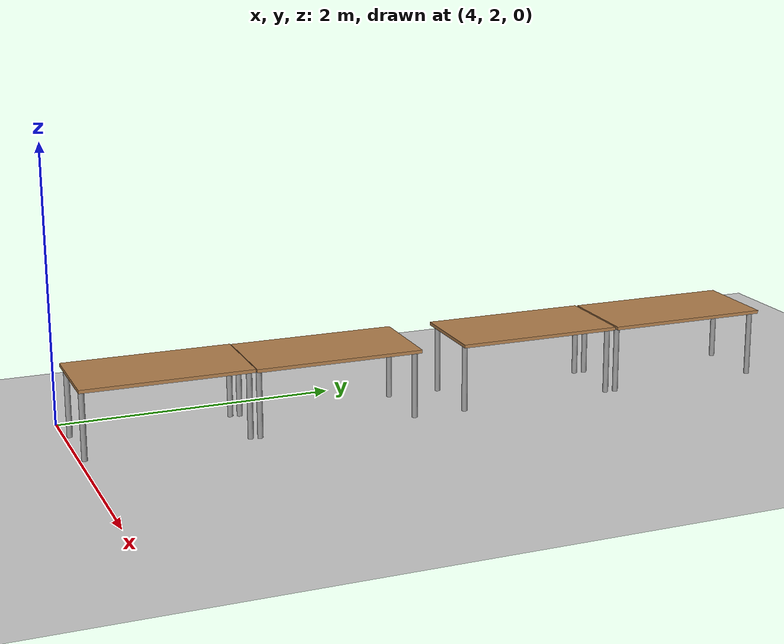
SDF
<sdf version="1.7">
 <world name="default">
  <model name="ground_plane">
   <static>1</static>
   <link name="link">
    <collision name="collision">
     <geometry><plane><normal>0 0 1</normal><size>100 100</size></plane></geometry>
     <surface>
      <contact><collide_bitmask>65535</collide_bitmask></contact>
      <friction><ode><mu>100</mu><mu2>50</mu2></ode></friction>
     </surface>
    </collision>
    <visual name="visual">
     <cast_shadows>0</cast_shadows>
     <geometry><plane><normal>0 0 1</normal><size>100 100</size></plane></geometry>
     <material>
      <script><uri>file://media/materials/scripts/gazebo.material</uri><name>Gazebo/Grey</name></script>
     </material>
    </visual>
   </link>
  </model>
  <model name="table_for_pc_clone_4">
   <link name="link">
    <inertial>
     <mass>1</mass>
     <inertia><ixx>1</ixx><ixy>0</ixy><ixz>0</ixz><iyy>1</iyy><iyz>0</iyz><izz>1</izz></inertia>
    </inertial>
    <visual name="back_right_leg">
     <pose>-0.57 -0.25 0.25 0 -0 0</pose>
     <geometry><cylinder><radius>0.02</radius><length>0.5</length></cylinder></geometry>
     <material>
      <script><uri>file://media/materials/scripts/gazebo.material</uri><name>Gazebo/Grey</name></script>
      <shader type="vertex"><normal_map>__default__</normal_map></shader>
      <ambient>0.3 0.3 0.3 1</ambient>
      <diffuse>0.7 0.7 0.7 1</diffuse>
      <specular>0.01 0.01 0.01 1</specular>
      <emissive>0 0 0 1</emissive>
     </material>
    </visual>
    <visual name="back_left_leg">
     <pose>-0.57 0.25 0.25 0 -0 0</pose>
     <geometry><cylinder><radius>0.02</radius><length>0.5</length></cylinder></geometry>
     <material>
      <script><uri>file://media/materials/scripts/gazebo.material</uri><name>Gazebo/Grey</name></script>
      <shader type="vertex"><normal_map>__default__</normal_map></shader>
      <ambient>0.3 0.3 0.3 1</ambient>
      <diffuse>0.7 0.7 0.7 1</diffuse>
      <specular>0.01 0.01 0.01 1</specular>
      <emissive>0 0 0 1</emissive>
     </material>
    </visual>
    <visual name="front_right_leg">
     <pose>0.57 -0.25 0.25 0 -0 0</pose>
     <geometry><cylinder><radius>0.02</radius><length>0.5</length></cylinder></geometry>
     <material>
      <script><uri>file://media/materials/scripts/gazebo.material</uri><name>Gazebo/Grey</name></script>
      <shader type="vertex"><normal_map>__default__</normal_map></shader>
      <ambient>0.3 0.3 0.3 1</ambient>
      <diffuse>0.7 0.7 0.7 1</diffuse>
      <specular>0.01 0.01 0.01 1</specular>
      <emissive>0 0 0 1</emissive>
     </material>
    </visual>
    <visual name="visual1">
     <pose>0 0 0.5 0 -0 0</pose>
     <geometry><box><size>1.2 0.64 0.024</size></box></geometry>
     <material>
      <script><uri>file://media/materials/scripts/gazebo.material</uri><name>Gazebo/Wood</name></script>
      <shader type="vertex"><normal_map>__default__</normal_map></shader>
      <ambient>1 1 1 1</ambient>
      <diffuse>1 1 1 1</diffuse>
      <specular>0.2 0.2 0.2 1</specular>
      <emissive>0 0 0 1</emissive>
     </material>
    </visual>
    <visual name="front_left_leg">
     <pose>0.57 0.25 0.25 0 -0 0</pose>
     <geometry><cylinder><radius>0.02</radius><length>0.5</length></cylinder></geometry>
     <material>
      <script><uri>file://media/materials/scripts/gazebo.material</uri><name>Gazebo/Grey</name></script>
      <shader type="vertex"><normal_map>__default__</normal_map></shader>
      <ambient>0.3 0.3 0.3 1</ambient>
      <diffuse>0.7 0.7 0.7 1</diffuse>
      <specular>0.01 0.01 0.01 1</specular>
      <emissive>0 0 0 1</emissive>
     </material>
    </visual>
    <collision name="surface">
     <pose>0 0 0.5 0 -0 0</pose>
     <geometry><box><size>1.2 0.64 0.024</size></box></geometry>
     <surface>
      <friction>
       <ode><mu>0.6</mu><mu2>0.6</mu2><fdir1>0 0 0</fdir1><slip1>0</slip1><slip2>0</slip2></ode>
       <torsional>
        <coefficient>1</coefficient>
        <patch_radius>0</patch_radius>
        <surface_radius>0</surface_radius>
        <use_patch_radius>1</use_patch_radius>
        <ode><slip>0</slip></ode>
       </torsional>
      </friction>
      <bounce><restitution_coefficient>0</restitution_coefficient><threshold>1e+06</threshold></bounce>
      <contact>
       <collide_without_contact>0</collide_without_contact>
       <collide_without_contact_bitmask>1</collide_without_contact_bitmask>
       <collide_bitmask>1</collide_bitmask>
       <ode>
        <soft_cfm>0</soft_cfm>
        <soft_erp>0.2</soft_erp>
        <kp>1e+13</kp>
        <kd>1</kd>
        <max_vel>0.01</max_vel>
        <min_depth>0</min_depth>
       </ode>
       <bullet>
        <split_impulse>1</split_impulse>
        <split_impulse_penetration_threshold>-0.01</split_impulse_penetration_threshold>
        <soft_cfm>0</soft_cfm>
        <soft_erp>0.2</soft_erp>
        <kp>1e+13</kp>
        <kd>1</kd>
       </bullet>
      </contact>
     </surface>
    </collision>
    <collision name="back_right_leg">
     <pose>-0.57 -0.25 0.25 0 -0 0</pose>
     <geometry><cylinder><radius>0.02</radius><length>0.5</length></cylinder></geometry>
     <surface>
      <friction>
       <ode><mu>1</mu><mu2>1</mu2><fdir1>0 0 0</fdir1><slip1>0</slip1><slip2>0</slip2></ode>
       <torsional>
        <coefficient>1</coefficient>
        <patch_radius>0</patch_radius>
        <surface_radius>0</surface_radius>
        <use_patch_radius>1</use_patch_radius>
        <ode><slip>0</slip></ode>
       </torsional>
      </friction>
      <bounce><restitution_coefficient>0</restitution_coefficient><threshold>1e+06</threshold></bounce>
      <contact>
       <collide_without_contact>0</collide_without_contact>
       <collide_without_contact_bitmask>1</collide_without_contact_bitmask>
       <collide_bitmask>1</collide_bitmask>
       <ode>
        <soft_cfm>0</soft_cfm>
        <soft_erp>0.2</soft_erp>
        <kp>1e+13</kp>
        <kd>1</kd>
        <max_vel>0.01</max_vel>
        <min_depth>0</min_depth>
       </ode>
       <bullet>
        <split_impulse>1</split_impulse>
        <split_impulse_penetration_threshold>-0.01</split_impulse_penetration_threshold>
        <soft_cfm>0</soft_cfm>
        <soft_erp>0.2</soft_erp>
        <kp>1e+13</kp>
        <kd>1</kd>
       </bullet>
      </contact>
     </surface>
    </collision>
    <collision name="front_right_leg">
     <pose>0.57 -0.25 0.25 0 -0 0</pose>
     <geometry><cylinder><radius>0.02</radius><length>0.5</length></cylinder></geometry>
     <surface>
      <friction>
       <ode><mu>1</mu><mu2>1</mu2><fdir1>0 0 0</fdir1><slip1>0</slip1><slip2>0</slip2></ode>
       <torsional>
        <coefficient>1</coefficient>
        <patch_radius>0</patch_radius>
        <surface_radius>0</surface_radius>
        <use_patch_radius>1</use_patch_radius>
        <ode><slip>0</slip></ode>
       </torsional>
      </friction>
      <bounce><restitution_coefficient>0</restitution_coefficient><threshold>1e+06</threshold></bounce>
      <contact>
       <collide_without_contact>0</collide_without_contact>
       <collide_without_contact_bitmask>1</collide_without_contact_bitmask>
       <collide_bitmask>1</collide_bitmask>
       <ode>
        <soft_cfm>0</soft_cfm>
        <soft_erp>0.2</soft_erp>
        <kp>1e+13</kp>
        <kd>1</kd>
        <max_vel>0.01</max_vel>
        <min_depth>0</min_depth>
       </ode>
       <bullet>
        <split_impulse>1</split_impulse>
        <split_impulse_penetration_threshold>-0.01</split_impulse_penetration_threshold>
        <soft_cfm>0</soft_cfm>
        <soft_erp>0.2</soft_erp>
        <kp>1e+13</kp>
        <kd>1</kd>
       </bullet>
      </contact>
     </surface>
    </collision>
    <collision name="back_left_leg">
     <pose>-0.57 0.25 0.25 0 -0 0</pose>
     <geometry><cylinder><radius>0.02</radius><length>0.5</length></cylinder></geometry>
     <surface>
      <friction>
       <ode><mu>1</mu><mu2>1</mu2><fdir1>0 0 0</fdir1><slip1>0</slip1><slip2>0</slip2></ode>
       <torsional>
        <coefficient>1</coefficient>
        <patch_radius>0</patch_radius>
        <surface_radius>0</surface_radius>
        <use_patch_radius>1</use_patch_radius>
        <ode><slip>0</slip></ode>
       </torsional>
      </friction>
      <bounce><restitution_coefficient>0</restitution_coefficient><threshold>1e+06</threshold></bounce>
      <contact>
       <collide_without_contact>0</collide_without_contact>
       <collide_without_contact_bitmask>1</collide_without_contact_bitmask>
       <collide_bitmask>1</collide_bitmask>
       <ode>
        <soft_cfm>0</soft_cfm>
        <soft_erp>0.2</soft_erp>
        <kp>1e+13</kp>
        <kd>1</kd>
        <max_vel>0.01</max_vel>
        <min_depth>0</min_depth>
       </ode>
       <bullet>
        <split_impulse>1</split_impulse>
        <split_impulse_penetration_threshold>-0.01</split_impulse_penetration_threshold>
        <soft_cfm>0</soft_cfm>
        <soft_erp>0.2</soft_erp>
        <kp>1e+13</kp>
        <kd>1</kd>
       </bullet>
      </contact>
     </surface>
    </collision>
    <collision name="front_left_leg">
     <pose>0.57 0.25 0.25 0 -0 0</pose>
     <geometry><cylinder><radius>0.02</radius><length>0.5</length></cylinder></geometry>
     <surface>
      <friction>
       <ode><mu>1</mu><mu2>1</mu2><fdir1>0 0 0</fdir1><slip1>0</slip1><slip2>0</slip2></ode>
       <torsional>
        <coefficient>1</coefficient>
        <patch_radius>0</patch_radius>
        <surface_radius>0</surface_radius>
        <use_patch_radius>1</use_patch_radius>
        <ode><slip>0</slip></ode>
       </torsional>
      </friction>
      <bounce><restitution_coefficient>0</restitution_coefficient><threshold>1e+06</threshold></bounce>
      <contact>
       <collide_without_contact>0</collide_without_contact>
       <collide_without_contact_bitmask>1</collide_without_contact_bitmask>
       <collide_bitmask>1</collide_bitmask>
       <ode>
        <soft_cfm>0</soft_cfm>
        <soft_erp>0.2</soft_erp>
        <kp>1e+13</kp>
        <kd>1</kd>
        <max_vel>0.01</max_vel>
        <min_depth>0</min_depth>
       </ode>
       <bullet>
        <split_impulse>1</split_impulse>
        <split_impulse_penetration_threshold>-0.01</split_impulse_penetration_threshold>
        <soft_cfm>0</soft_cfm>
        <soft_erp>0.2</soft_erp>
        <kp>1e+13</kp>
        <kd>1</kd>
       </bullet>
      </contact>
     </surface>
    </collision>
   </link>
   <static>1</static>
   <pose>4.573 6.55305 0 0 -0 1.56413</pose>
  </model>
  <model name="table_for_pc_clone_5">
   <link name="link">
    <inertial>
     <mass>1</mass>
     <inertia><ixx>1</ixx><ixy>0</ixy><ixz>0</ixz><iyy>1</iyy><iyz>0</iyz><izz>1</izz></inertia>
    </inertial>
    <visual name="back_right_leg">
     <pose>-0.57 -0.25 0.25 0 -0 0</pose>
     <geometry><cylinder><radius>0.02</radius><length>0.5</length></cylinder></geometry>
     <material>
      <script><uri>file://media/materials/scripts/gazebo.material</uri><name>Gazebo/Grey</name></script>
      <shader type="vertex"><normal_map>__default__</normal_map></shader>
      <ambient>0.3 0.3 0.3 1</ambient>
      <diffuse>0.7 0.7 0.7 1</diffuse>
      <specular>0.01 0.01 0.01 1</specular>
      <emissive>0 0 0 1</emissive>
     </material>
    </visual>
    <visual name="back_left_leg">
     <pose>-0.57 0.25 0.25 0 -0 0</pose>
     <geometry><cylinder><radius>0.02</radius><length>0.5</length></cylinder></geometry>
     <material>
      <script><uri>file://media/materials/scripts/gazebo.material</uri><name>Gazebo/Grey</name></script>
      <shader type="vertex"><normal_map>__default__</normal_map></shader>
      <ambient>0.3 0.3 0.3 1</ambient>
      <diffuse>0.7 0.7 0.7 1</diffuse>
      <specular>0.01 0.01 0.01 1</specular>
      <emissive>0 0 0 1</emissive>
     </material>
    </visual>
    <visual name="front_right_leg">
     <pose>0.57 -0.25 0.25 0 -0 0</pose>
     <geometry><cylinder><radius>0.02</radius><length>0.5</length></cylinder></geometry>
     <material>
      <script><uri>file://media/materials/scripts/gazebo.material</uri><name>Gazebo/Grey</name></script>
      <shader type="vertex"><normal_map>__default__</normal_map></shader>
      <ambient>0.3 0.3 0.3 1</ambient>
      <diffuse>0.7 0.7 0.7 1</diffuse>
      <specular>0.01 0.01 0.01 1</specular>
      <emissive>0 0 0 1</emissive>
     </material>
    </visual>
    <visual name="visual1">
     <pose>0 0 0.5 0 -0 0</pose>
     <geometry><box><size>1.2 0.64 0.024</size></box></geometry>
     <material>
      <script><uri>file://media/materials/scripts/gazebo.material</uri><name>Gazebo/Wood</name></script>
      <shader type="vertex"><normal_map>__default__</normal_map></shader>
      <ambient>1 1 1 1</ambient>
      <diffuse>1 1 1 1</diffuse>
      <specular>0.2 0.2 0.2 1</specular>
      <emissive>0 0 0 1</emissive>
     </material>
    </visual>
    <visual name="front_left_leg">
     <pose>0.57 0.25 0.25 0 -0 0</pose>
     <geometry><cylinder><radius>0.02</radius><length>0.5</length></cylinder></geometry>
     <material>
      <script><uri>file://media/materials/scripts/gazebo.material</uri><name>Gazebo/Grey</name></script>
      <shader type="vertex"><normal_map>__default__</normal_map></shader>
      <ambient>0.3 0.3 0.3 1</ambient>
      <diffuse>0.7 0.7 0.7 1</diffuse>
      <specular>0.01 0.01 0.01 1</specular>
      <emissive>0 0 0 1</emissive>
     </material>
    </visual>
    <collision name="surface">
     <pose>0 0 0.5 0 -0 0</pose>
     <geometry><box><size>1.2 0.64 0.024</size></box></geometry>
     <surface>
      <friction>
       <ode><mu>0.6</mu><mu2>0.6</mu2><fdir1>0 0 0</fdir1><slip1>0</slip1><slip2>0</slip2></ode>
       <torsional>
        <coefficient>1</coefficient>
        <patch_radius>0</patch_radius>
        <surface_radius>0</surface_radius>
        <use_patch_radius>1</use_patch_radius>
        <ode><slip>0</slip></ode>
       </torsional>
      </friction>
      <bounce><restitution_coefficient>0</restitution_coefficient><threshold>1e+06</threshold></bounce>
      <contact>
       <collide_without_contact>0</collide_without_contact>
       <collide_without_contact_bitmask>1</collide_without_contact_bitmask>
       <collide_bitmask>1</collide_bitmask>
       <ode>
        <soft_cfm>0</soft_cfm>
        <soft_erp>0.2</soft_erp>
        <kp>1e+13</kp>
        <kd>1</kd>
        <max_vel>0.01</max_vel>
        <min_depth>0</min_depth>
       </ode>
       <bullet>
        <split_impulse>1</split_impulse>
        <split_impulse_penetration_threshold>-0.01</split_impulse_penetration_threshold>
        <soft_cfm>0</soft_cfm>
        <soft_erp>0.2</soft_erp>
        <kp>1e+13</kp>
        <kd>1</kd>
       </bullet>
      </contact>
     </surface>
    </collision>
    <collision name="back_right_leg">
     <pose>-0.57 -0.25 0.25 0 -0 0</pose>
     <geometry><cylinder><radius>0.02</radius><length>0.5</length></cylinder></geometry>
     <surface>
      <friction>
       <ode><mu>1</mu><mu2>1</mu2><fdir1>0 0 0</fdir1><slip1>0</slip1><slip2>0</slip2></ode>
       <torsional>
        <coefficient>1</coefficient>
        <patch_radius>0</patch_radius>
        <surface_radius>0</surface_radius>
        <use_patch_radius>1</use_patch_radius>
        <ode><slip>0</slip></ode>
       </torsional>
      </friction>
      <bounce><restitution_coefficient>0</restitution_coefficient><threshold>1e+06</threshold></bounce>
      <contact>
       <collide_without_contact>0</collide_without_contact>
       <collide_without_contact_bitmask>1</collide_without_contact_bitmask>
       <collide_bitmask>1</collide_bitmask>
       <ode>
        <soft_cfm>0</soft_cfm>
        <soft_erp>0.2</soft_erp>
        <kp>1e+13</kp>
        <kd>1</kd>
        <max_vel>0.01</max_vel>
        <min_depth>0</min_depth>
       </ode>
       <bullet>
        <split_impulse>1</split_impulse>
        <split_impulse_penetration_threshold>-0.01</split_impulse_penetration_threshold>
        <soft_cfm>0</soft_cfm>
        <soft_erp>0.2</soft_erp>
        <kp>1e+13</kp>
        <kd>1</kd>
       </bullet>
      </contact>
     </surface>
    </collision>
    <collision name="front_right_leg">
     <pose>0.57 -0.25 0.25 0 -0 0</pose>
     <geometry><cylinder><radius>0.02</radius><length>0.5</length></cylinder></geometry>
     <surface>
      <friction>
       <ode><mu>1</mu><mu2>1</mu2><fdir1>0 0 0</fdir1><slip1>0</slip1><slip2>0</slip2></ode>
       <torsional>
        <coefficient>1</coefficient>
        <patch_radius>0</patch_radius>
        <surface_radius>0</surface_radius>
        <use_patch_radius>1</use_patch_radius>
        <ode><slip>0</slip></ode>
       </torsional>
      </friction>
      <bounce><restitution_coefficient>0</restitution_coefficient><threshold>1e+06</threshold></bounce>
      <contact>
       <collide_without_contact>0</collide_without_contact>
       <collide_without_contact_bitmask>1</collide_without_contact_bitmask>
       <collide_bitmask>1</collide_bitmask>
       <ode>
        <soft_cfm>0</soft_cfm>
        <soft_erp>0.2</soft_erp>
        <kp>1e+13</kp>
        <kd>1</kd>
        <max_vel>0.01</max_vel>
        <min_depth>0</min_depth>
       </ode>
       <bullet>
        <split_impulse>1</split_impulse>
        <split_impulse_penetration_threshold>-0.01</split_impulse_penetration_threshold>
        <soft_cfm>0</soft_cfm>
        <soft_erp>0.2</soft_erp>
        <kp>1e+13</kp>
        <kd>1</kd>
       </bullet>
      </contact>
     </surface>
    </collision>
    <collision name="back_left_leg">
     <pose>-0.57 0.25 0.25 0 -0 0</pose>
     <geometry><cylinder><radius>0.02</radius><length>0.5</length></cylinder></geometry>
     <surface>
      <friction>
       <ode><mu>1</mu><mu2>1</mu2><fdir1>0 0 0</fdir1><slip1>0</slip1><slip2>0</slip2></ode>
       <torsional>
        <coefficient>1</coefficient>
        <patch_radius>0</patch_radius>
        <surface_radius>0</surface_radius>
        <use_patch_radius>1</use_patch_radius>
        <ode><slip>0</slip></ode>
       </torsional>
      </friction>
      <bounce><restitution_coefficient>0</restitution_coefficient><threshold>1e+06</threshold></bounce>
      <contact>
       <collide_without_contact>0</collide_without_contact>
       <collide_without_contact_bitmask>1</collide_without_contact_bitmask>
       <collide_bitmask>1</collide_bitmask>
       <ode>
        <soft_cfm>0</soft_cfm>
        <soft_erp>0.2</soft_erp>
        <kp>1e+13</kp>
        <kd>1</kd>
        <max_vel>0.01</max_vel>
        <min_depth>0</min_depth>
       </ode>
       <bullet>
        <split_impulse>1</split_impulse>
        <split_impulse_penetration_threshold>-0.01</split_impulse_penetration_threshold>
        <soft_cfm>0</soft_cfm>
        <soft_erp>0.2</soft_erp>
        <kp>1e+13</kp>
        <kd>1</kd>
       </bullet>
      </contact>
     </surface>
    </collision>
    <collision name="front_left_leg">
     <pose>0.57 0.25 0.25 0 -0 0</pose>
     <geometry><cylinder><radius>0.02</radius><length>0.5</length></cylinder></geometry>
     <surface>
      <friction>
       <ode><mu>1</mu><mu2>1</mu2><fdir1>0 0 0</fdir1><slip1>0</slip1><slip2>0</slip2></ode>
       <torsional>
        <coefficient>1</coefficient>
        <patch_radius>0</patch_radius>
        <surface_radius>0</surface_radius>
        <use_patch_radius>1</use_patch_radius>
        <ode><slip>0</slip></ode>
       </torsional>
      </friction>
      <bounce><restitution_coefficient>0</restitution_coefficient><threshold>1e+06</threshold></bounce>
      <contact>
       <collide_without_contact>0</collide_without_contact>
       <collide_without_contact_bitmask>1</collide_without_contact_bitmask>
       <collide_bitmask>1</collide_bitmask>
       <ode>
        <soft_cfm>0</soft_cfm>
        <soft_erp>0.2</soft_erp>
        <kp>1e+13</kp>
        <kd>1</kd>
        <max_vel>0.01</max_vel>
        <min_depth>0</min_depth>
       </ode>
       <bullet>
        <split_impulse>1</split_impulse>
        <split_impulse_penetration_threshold>-0.01</split_impulse_penetration_threshold>
        <soft_cfm>0</soft_cfm>
        <soft_erp>0.2</soft_erp>
        <kp>1e+13</kp>
        <kd>1</kd>
       </bullet>
      </contact>
     </surface>
    </collision>
   </link>
   <static>1</static>
   <pose>4.55794 5.33664 0 0 -0 1.56413</pose>
  </model>
  <model name="table_for_pc_clone_6">
   <link name="link">
    <inertial>
     <mass>1</mass>
     <inertia><ixx>1</ixx><ixy>0</ixy><ixz>0</ixz><iyy>1</iyy><iyz>0</iyz><izz>1</izz></inertia>
    </inertial>
    <visual name="back_right_leg">
     <pose>-0.57 -0.25 0.25 0 -0 0</pose>
     <geometry><cylinder><radius>0.02</radius><length>0.5</length></cylinder></geometry>
     <material>
      <script><uri>file://media/materials/scripts/gazebo.material</uri><name>Gazebo/Grey</name></script>
      <shader type="vertex"><normal_map>__default__</normal_map></shader>
      <ambient>0.3 0.3 0.3 1</ambient>
      <diffuse>0.7 0.7 0.7 1</diffuse>
      <specular>0.01 0.01 0.01 1</specular>
      <emissive>0 0 0 1</emissive>
     </material>
    </visual>
    <visual name="back_left_leg">
     <pose>-0.57 0.25 0.25 0 -0 0</pose>
     <geometry><cylinder><radius>0.02</radius><length>0.5</length></cylinder></geometry>
     <material>
      <script><uri>file://media/materials/scripts/gazebo.material</uri><name>Gazebo/Grey</name></script>
      <shader type="vertex"><normal_map>__default__</normal_map></shader>
      <ambient>0.3 0.3 0.3 1</ambient>
      <diffuse>0.7 0.7 0.7 1</diffuse>
      <specular>0.01 0.01 0.01 1</specular>
      <emissive>0 0 0 1</emissive>
     </material>
    </visual>
    <visual name="front_right_leg">
     <pose>0.57 -0.25 0.25 0 -0 0</pose>
     <geometry><cylinder><radius>0.02</radius><length>0.5</length></cylinder></geometry>
     <material>
      <script><uri>file://media/materials/scripts/gazebo.material</uri><name>Gazebo/Grey</name></script>
      <shader type="vertex"><normal_map>__default__</normal_map></shader>
      <ambient>0.3 0.3 0.3 1</ambient>
      <diffuse>0.7 0.7 0.7 1</diffuse>
      <specular>0.01 0.01 0.01 1</specular>
      <emissive>0 0 0 1</emissive>
     </material>
    </visual>
    <visual name="visual1">
     <pose>0 0 0.5 0 -0 0</pose>
     <geometry><box><size>1.2 0.64 0.024</size></box></geometry>
     <material>
      <script><uri>file://media/materials/scripts/gazebo.material</uri><name>Gazebo/Wood</name></script>
      <shader type="vertex"><normal_map>__default__</normal_map></shader>
      <ambient>1 1 1 1</ambient>
      <diffuse>1 1 1 1</diffuse>
      <specular>0.2 0.2 0.2 1</specular>
      <emissive>0 0 0 1</emissive>
     </material>
    </visual>
    <visual name="front_left_leg">
     <pose>0.57 0.25 0.25 0 -0 0</pose>
     <geometry><cylinder><radius>0.02</radius><length>0.5</length></cylinder></geometry>
     <material>
      <script><uri>file://media/materials/scripts/gazebo.material</uri><name>Gazebo/Grey</name></script>
      <shader type="vertex"><normal_map>__default__</normal_map></shader>
      <ambient>0.3 0.3 0.3 1</ambient>
      <diffuse>0.7 0.7 0.7 1</diffuse>
      <specular>0.01 0.01 0.01 1</specular>
      <emissive>0 0 0 1</emissive>
     </material>
    </visual>
    <collision name="surface">
     <pose>0 0 0.5 0 -0 0</pose>
     <geometry><box><size>1.2 0.64 0.024</size></box></geometry>
     <surface>
      <friction>
       <ode><mu>0.6</mu><mu2>0.6</mu2><fdir1>0 0 0</fdir1><slip1>0</slip1><slip2>0</slip2></ode>
       <torsional>
        <coefficient>1</coefficient>
        <patch_radius>0</patch_radius>
        <surface_radius>0</surface_radius>
        <use_patch_radius>1</use_patch_radius>
        <ode><slip>0</slip></ode>
       </torsional>
      </friction>
      <bounce><restitution_coefficient>0</restitution_coefficient><threshold>1e+06</threshold></bounce>
      <contact>
       <collide_without_contact>0</collide_without_contact>
       <collide_without_contact_bitmask>1</collide_without_contact_bitmask>
       <collide_bitmask>1</collide_bitmask>
       <ode>
        <soft_cfm>0</soft_cfm>
        <soft_erp>0.2</soft_erp>
        <kp>1e+13</kp>
        <kd>1</kd>
        <max_vel>0.01</max_vel>
        <min_depth>0</min_depth>
       </ode>
       <bullet>
        <split_impulse>1</split_impulse>
        <split_impulse_penetration_threshold>-0.01</split_impulse_penetration_threshold>
        <soft_cfm>0</soft_cfm>
        <soft_erp>0.2</soft_erp>
        <kp>1e+13</kp>
        <kd>1</kd>
       </bullet>
      </contact>
     </surface>
    </collision>
    <collision name="back_right_leg">
     <pose>-0.57 -0.25 0.25 0 -0 0</pose>
     <geometry><cylinder><radius>0.02</radius><length>0.5</length></cylinder></geometry>
     <surface>
      <friction>
       <ode><mu>1</mu><mu2>1</mu2><fdir1>0 0 0</fdir1><slip1>0</slip1><slip2>0</slip2></ode>
       <torsional>
        <coefficient>1</coefficient>
        <patch_radius>0</patch_radius>
        <surface_radius>0</surface_radius>
        <use_patch_radius>1</use_patch_radius>
        <ode><slip>0</slip></ode>
       </torsional>
      </friction>
      <bounce><restitution_coefficient>0</restitution_coefficient><threshold>1e+06</threshold></bounce>
      <contact>
       <collide_without_contact>0</collide_without_contact>
       <collide_without_contact_bitmask>1</collide_without_contact_bitmask>
       <collide_bitmask>1</collide_bitmask>
       <ode>
        <soft_cfm>0</soft_cfm>
        <soft_erp>0.2</soft_erp>
        <kp>1e+13</kp>
        <kd>1</kd>
        <max_vel>0.01</max_vel>
        <min_depth>0</min_depth>
       </ode>
       <bullet>
        <split_impulse>1</split_impulse>
        <split_impulse_penetration_threshold>-0.01</split_impulse_penetration_threshold>
        <soft_cfm>0</soft_cfm>
        <soft_erp>0.2</soft_erp>
        <kp>1e+13</kp>
        <kd>1</kd>
       </bullet>
      </contact>
     </surface>
    </collision>
    <collision name="front_right_leg">
     <pose>0.57 -0.25 0.25 0 -0 0</pose>
     <geometry><cylinder><radius>0.02</radius><length>0.5</length></cylinder></geometry>
     <surface>
      <friction>
       <ode><mu>1</mu><mu2>1</mu2><fdir1>0 0 0</fdir1><slip1>0</slip1><slip2>0</slip2></ode>
       <torsional>
        <coefficient>1</coefficient>
        <patch_radius>0</patch_radius>
        <surface_radius>0</surface_radius>
        <use_patch_radius>1</use_patch_radius>
        <ode><slip>0</slip></ode>
       </torsional>
      </friction>
      <bounce><restitution_coefficient>0</restitution_coefficient><threshold>1e+06</threshold></bounce>
      <contact>
       <collide_without_contact>0</collide_without_contact>
       <collide_without_contact_bitmask>1</collide_without_contact_bitmask>
       <collide_bitmask>1</collide_bitmask>
       <ode>
        <soft_cfm>0</soft_cfm>
        <soft_erp>0.2</soft_erp>
        <kp>1e+13</kp>
        <kd>1</kd>
        <max_vel>0.01</max_vel>
        <min_depth>0</min_depth>
       </ode>
       <bullet>
        <split_impulse>1</split_impulse>
        <split_impulse_penetration_threshold>-0.01</split_impulse_penetration_threshold>
        <soft_cfm>0</soft_cfm>
        <soft_erp>0.2</soft_erp>
        <kp>1e+13</kp>
        <kd>1</kd>
       </bullet>
      </contact>
     </surface>
    </collision>
    <collision name="back_left_leg">
     <pose>-0.57 0.25 0.25 0 -0 0</pose>
     <geometry><cylinder><radius>0.02</radius><length>0.5</length></cylinder></geometry>
     <surface>
      <friction>
       <ode><mu>1</mu><mu2>1</mu2><fdir1>0 0 0</fdir1><slip1>0</slip1><slip2>0</slip2></ode>
       <torsional>
        <coefficient>1</coefficient>
        <patch_radius>0</patch_radius>
        <surface_radius>0</surface_radius>
        <use_patch_radius>1</use_patch_radius>
        <ode><slip>0</slip></ode>
       </torsional>
      </friction>
      <bounce><restitution_coefficient>0</restitution_coefficient><threshold>1e+06</threshold></bounce>
      <contact>
       <collide_without_contact>0</collide_without_contact>
       <collide_without_contact_bitmask>1</collide_without_contact_bitmask>
       <collide_bitmask>1</collide_bitmask>
       <ode>
        <soft_cfm>0</soft_cfm>
        <soft_erp>0.2</soft_erp>
        <kp>1e+13</kp>
        <kd>1</kd>
        <max_vel>0.01</max_vel>
        <min_depth>0</min_depth>
       </ode>
       <bullet>
        <split_impulse>1</split_impulse>
        <split_impulse_penetration_threshold>-0.01</split_impulse_penetration_threshold>
        <soft_cfm>0</soft_cfm>
        <soft_erp>0.2</soft_erp>
        <kp>1e+13</kp>
        <kd>1</kd>
       </bullet>
      </contact>
     </surface>
    </collision>
    <collision name="front_left_leg">
     <pose>0.57 0.25 0.25 0 -0 0</pose>
     <geometry><cylinder><radius>0.02</radius><length>0.5</length></cylinder></geometry>
     <surface>
      <friction>
       <ode><mu>1</mu><mu2>1</mu2><fdir1>0 0 0</fdir1><slip1>0</slip1><slip2>0</slip2></ode>
       <torsional>
        <coefficient>1</coefficient>
        <patch_radius>0</patch_radius>
        <surface_radius>0</surface_radius>
        <use_patch_radius>1</use_patch_radius>
        <ode><slip>0</slip></ode>
       </torsional>
      </friction>
      <bounce><restitution_coefficient>0</restitution_coefficient><threshold>1e+06</threshold></bounce>
      <contact>
       <collide_without_contact>0</collide_without_contact>
       <collide_without_contact_bitmask>1</collide_without_contact_bitmask>
       <collide_bitmask>1</collide_bitmask>
       <ode>
        <soft_cfm>0</soft_cfm>
        <soft_erp>0.2</soft_erp>
        <kp>1e+13</kp>
        <kd>1</kd>
        <max_vel>0.01</max_vel>
        <min_depth>0</min_depth>
       </ode>
       <bullet>
        <split_impulse>1</split_impulse>
        <split_impulse_penetration_threshold>-0.01</split_impulse_penetration_threshold>
        <soft_cfm>0</soft_cfm>
        <soft_erp>0.2</soft_erp>
        <kp>1e+13</kp>
        <kd>1</kd>
       </bullet>
      </contact>
     </surface>
    </collision>
   </link>
   <static>1</static>
   <pose>4.54288 3.81482 0 0 -0 1.56413</pose>
  </model>
  <model name="table_for_pc_clone_7">
   <link name="link">
    <inertial>
     <mass>1</mass>
     <inertia><ixx>1</ixx><ixy>0</ixy><ixz>0</ixz><iyy>1</iyy><iyz>0</iyz><izz>1</izz></inertia>
    </inertial>
    <visual name="back_right_leg">
     <pose>-0.57 -0.25 0.25 0 -0 0</pose>
     <geometry><cylinder><radius>0.02</radius><length>0.5</length></cylinder></geometry>
     <material>
      <script><uri>file://media/materials/scripts/gazebo.material</uri><name>Gazebo/Grey</name></script>
      <shader type="vertex"><normal_map>__default__</normal_map></shader>
      <ambient>0.3 0.3 0.3 1</ambient>
      <diffuse>0.7 0.7 0.7 1</diffuse>
      <specular>0.01 0.01 0.01 1</specular>
      <emissive>0 0 0 1</emissive>
     </material>
    </visual>
    <visual name="back_left_leg">
     <pose>-0.57 0.25 0.25 0 -0 0</pose>
     <geometry><cylinder><radius>0.02</radius><length>0.5</length></cylinder></geometry>
     <material>
      <script><uri>file://media/materials/scripts/gazebo.material</uri><name>Gazebo/Grey</name></script>
      <shader type="vertex"><normal_map>__default__</normal_map></shader>
      <ambient>0.3 0.3 0.3 1</ambient>
      <diffuse>0.7 0.7 0.7 1</diffuse>
      <specular>0.01 0.01 0.01 1</specular>
      <emissive>0 0 0 1</emissive>
     </material>
    </visual>
    <visual name="front_right_leg">
     <pose>0.57 -0.25 0.25 0 -0 0</pose>
     <geometry><cylinder><radius>0.02</radius><length>0.5</length></cylinder></geometry>
     <material>
      <script><uri>file://media/materials/scripts/gazebo.material</uri><name>Gazebo/Grey</name></script>
      <shader type="vertex"><normal_map>__default__</normal_map></shader>
      <ambient>0.3 0.3 0.3 1</ambient>
      <diffuse>0.7 0.7 0.7 1</diffuse>
      <specular>0.01 0.01 0.01 1</specular>
      <emissive>0 0 0 1</emissive>
     </material>
    </visual>
    <visual name="visual1">
     <pose>0 0 0.5 0 -0 0</pose>
     <geometry><box><size>1.2 0.64 0.024</size></box></geometry>
     <material>
      <script><uri>file://media/materials/scripts/gazebo.material</uri><name>Gazebo/Wood</name></script>
      <shader type="vertex"><normal_map>__default__</normal_map></shader>
      <ambient>1 1 1 1</ambient>
      <diffuse>1 1 1 1</diffuse>
      <specular>0.2 0.2 0.2 1</specular>
      <emissive>0 0 0 1</emissive>
     </material>
    </visual>
    <visual name="front_left_leg">
     <pose>0.57 0.25 0.25 0 -0 0</pose>
     <geometry><cylinder><radius>0.02</radius><length>0.5</length></cylinder></geometry>
     <material>
      <script><uri>file://media/materials/scripts/gazebo.material</uri><name>Gazebo/Grey</name></script>
      <shader type="vertex"><normal_map>__default__</normal_map></shader>
      <ambient>0.3 0.3 0.3 1</ambient>
      <diffuse>0.7 0.7 0.7 1</diffuse>
      <specular>0.01 0.01 0.01 1</specular>
      <emissive>0 0 0 1</emissive>
     </material>
    </visual>
    <collision name="surface">
     <pose>0 0 0.5 0 -0 0</pose>
     <geometry><box><size>1.2 0.64 0.024</size></box></geometry>
     <surface>
      <friction>
       <ode><mu>0.6</mu><mu2>0.6</mu2><fdir1>0 0 0</fdir1><slip1>0</slip1><slip2>0</slip2></ode>
       <torsional>
        <coefficient>1</coefficient>
        <patch_radius>0</patch_radius>
        <surface_radius>0</surface_radius>
        <use_patch_radius>1</use_patch_radius>
        <ode><slip>0</slip></ode>
       </torsional>
      </friction>
      <bounce><restitution_coefficient>0</restitution_coefficient><threshold>1e+06</threshold></bounce>
      <contact>
       <collide_without_contact>0</collide_without_contact>
       <collide_without_contact_bitmask>1</collide_without_contact_bitmask>
       <collide_bitmask>1</collide_bitmask>
       <ode>
        <soft_cfm>0</soft_cfm>
        <soft_erp>0.2</soft_erp>
        <kp>1e+13</kp>
        <kd>1</kd>
        <max_vel>0.01</max_vel>
        <min_depth>0</min_depth>
       </ode>
       <bullet>
        <split_impulse>1</split_impulse>
        <split_impulse_penetration_threshold>-0.01</split_impulse_penetration_threshold>
        <soft_cfm>0</soft_cfm>
        <soft_erp>0.2</soft_erp>
        <kp>1e+13</kp>
        <kd>1</kd>
       </bullet>
      </contact>
     </surface>
    </collision>
    <collision name="back_right_leg">
     <pose>-0.57 -0.25 0.25 0 -0 0</pose>
     <geometry><cylinder><radius>0.02</radius><length>0.5</length></cylinder></geometry>
     <surface>
      <friction>
       <ode><mu>1</mu><mu2>1</mu2><fdir1>0 0 0</fdir1><slip1>0</slip1><slip2>0</slip2></ode>
       <torsional>
        <coefficient>1</coefficient>
        <patch_radius>0</patch_radius>
        <surface_radius>0</surface_radius>
        <use_patch_radius>1</use_patch_radius>
        <ode><slip>0</slip></ode>
       </torsional>
      </friction>
      <bounce><restitution_coefficient>0</restitution_coefficient><threshold>1e+06</threshold></bounce>
      <contact>
       <collide_without_contact>0</collide_without_contact>
       <collide_without_contact_bitmask>1</collide_without_contact_bitmask>
       <collide_bitmask>1</collide_bitmask>
       <ode>
        <soft_cfm>0</soft_cfm>
        <soft_erp>0.2</soft_erp>
        <kp>1e+13</kp>
        <kd>1</kd>
        <max_vel>0.01</max_vel>
        <min_depth>0</min_depth>
       </ode>
       <bullet>
        <split_impulse>1</split_impulse>
        <split_impulse_penetration_threshold>-0.01</split_impulse_penetration_threshold>
        <soft_cfm>0</soft_cfm>
        <soft_erp>0.2</soft_erp>
        <kp>1e+13</kp>
        <kd>1</kd>
       </bullet>
      </contact>
     </surface>
    </collision>
    <collision name="front_right_leg">
     <pose>0.57 -0.25 0.25 0 -0 0</pose>
     <geometry><cylinder><radius>0.02</radius><length>0.5</length></cylinder></geometry>
     <surface>
      <friction>
       <ode><mu>1</mu><mu2>1</mu2><fdir1>0 0 0</fdir1><slip1>0</slip1><slip2>0</slip2></ode>
       <torsional>
        <coefficient>1</coefficient>
        <patch_radius>0</patch_radius>
        <surface_radius>0</surface_radius>
        <use_patch_radius>1</use_patch_radius>
        <ode><slip>0</slip></ode>
       </torsional>
      </friction>
      <bounce><restitution_coefficient>0</restitution_coefficient><threshold>1e+06</threshold></bounce>
      <contact>
       <collide_without_contact>0</collide_without_contact>
       <collide_without_contact_bitmask>1</collide_without_contact_bitmask>
       <collide_bitmask>1</collide_bitmask>
       <ode>
        <soft_cfm>0</soft_cfm>
        <soft_erp>0.2</soft_erp>
        <kp>1e+13</kp>
        <kd>1</kd>
        <max_vel>0.01</max_vel>
        <min_depth>0</min_depth>
       </ode>
       <bullet>
        <split_impulse>1</split_impulse>
        <split_impulse_penetration_threshold>-0.01</split_impulse_penetration_threshold>
        <soft_cfm>0</soft_cfm>
        <soft_erp>0.2</soft_erp>
        <kp>1e+13</kp>
        <kd>1</kd>
       </bullet>
      </contact>
     </surface>
    </collision>
    <collision name="back_left_leg">
     <pose>-0.57 0.25 0.25 0 -0 0</pose>
     <geometry><cylinder><radius>0.02</radius><length>0.5</length></cylinder></geometry>
     <surface>
      <friction>
       <ode><mu>1</mu><mu2>1</mu2><fdir1>0 0 0</fdir1><slip1>0</slip1><slip2>0</slip2></ode>
       <torsional>
        <coefficient>1</coefficient>
        <patch_radius>0</patch_radius>
        <surface_radius>0</surface_radius>
        <use_patch_radius>1</use_patch_radius>
        <ode><slip>0</slip></ode>
       </torsional>
      </friction>
      <bounce><restitution_coefficient>0</restitution_coefficient><threshold>1e+06</threshold></bounce>
      <contact>
       <collide_without_contact>0</collide_without_contact>
       <collide_without_contact_bitmask>1</collide_without_contact_bitmask>
       <collide_bitmask>1</collide_bitmask>
       <ode>
        <soft_cfm>0</soft_cfm>
        <soft_erp>0.2</soft_erp>
        <kp>1e+13</kp>
        <kd>1</kd>
        <max_vel>0.01</max_vel>
        <min_depth>0</min_depth>
       </ode>
       <bullet>
        <split_impulse>1</split_impulse>
        <split_impulse_penetration_threshold>-0.01</split_impulse_penetration_threshold>
        <soft_cfm>0</soft_cfm>
        <soft_erp>0.2</soft_erp>
        <kp>1e+13</kp>
        <kd>1</kd>
       </bullet>
      </contact>
     </surface>
    </collision>
    <collision name="front_left_leg">
     <pose>0.57 0.25 0.25 0 -0 0</pose>
     <geometry><cylinder><radius>0.02</radius><length>0.5</length></cylinder></geometry>
     <surface>
      <friction>
       <ode><mu>1</mu><mu2>1</mu2><fdir1>0 0 0</fdir1><slip1>0</slip1><slip2>0</slip2></ode>
       <torsional>
        <coefficient>1</coefficient>
        <patch_radius>0</patch_radius>
        <surface_radius>0</surface_radius>
        <use_patch_radius>1</use_patch_radius>
        <ode><slip>0</slip></ode>
       </torsional>
      </friction>
      <bounce><restitution_coefficient>0</restitution_coefficient><threshold>1e+06</threshold></bounce>
      <contact>
       <collide_without_contact>0</collide_without_contact>
       <collide_without_contact_bitmask>1</collide_without_contact_bitmask>
       <collide_bitmask>1</collide_bitmask>
       <ode>
        <soft_cfm>0</soft_cfm>
        <soft_erp>0.2</soft_erp>
        <kp>1e+13</kp>
        <kd>1</kd>
        <max_vel>0.01</max_vel>
        <min_depth>0</min_depth>
       </ode>
       <bullet>
        <split_impulse>1</split_impulse>
        <split_impulse_penetration_threshold>-0.01</split_impulse_penetration_threshold>
        <soft_cfm>0</soft_cfm>
        <soft_erp>0.2</soft_erp>
        <kp>1e+13</kp>
        <kd>1</kd>
       </bullet>
      </contact>
     </surface>
    </collision>
   </link>
   <static>1</static>
   <pose>4.52284 2.60995 0 0 -0 1.56413</pose>
  </model>
 </world>
</sdf>
